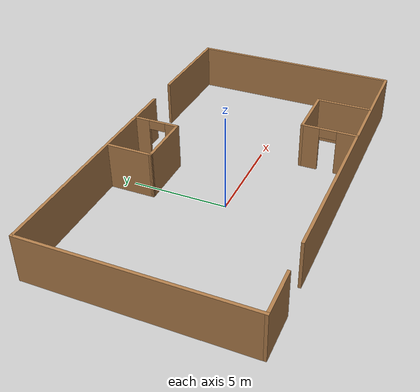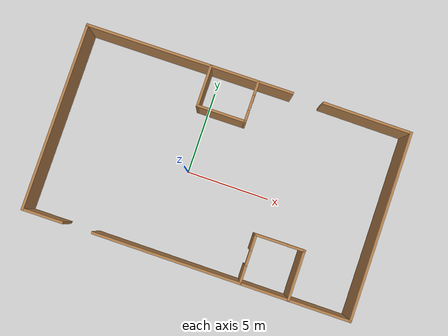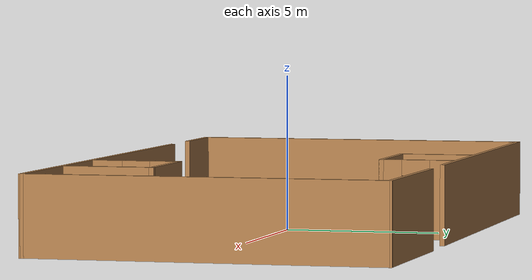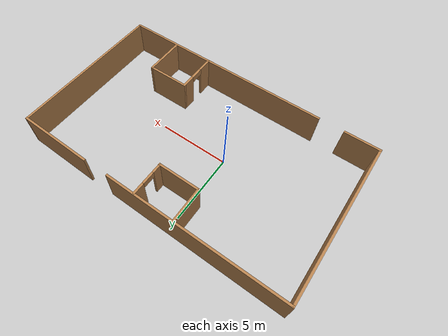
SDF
<?xml version='1.0'?>
<sdf version='1.7'>
  <model name='world'>
    <pose>1.6759 0.487034 0 0 -0 0</pose>
    <link name='Wall_0'>
      <collision name='Wall_0_Collision'>
        <geometry>
          <box>
            <size>11.2584 0.15 2.5</size>
          </box>
        </geometry>
        <pose>0 0 1.25 0 -0 0</pose>
      </collision>
      <visual name='Wall_0_Visual'>
        <pose>0 0 1.25 0 -0 0</pose>
        <geometry>
          <box>
            <size>11.2584 0.15 2.5</size>
          </box>
        </geometry>
        <material>
          <script>
            <uri>file://media/materials/scripts/gazebo.material</uri>
            <name>Gazebo/Wood</name>
          </script>
          <ambient>1 1 1 1</ambient>
        </material>
        <meta>
          <layer>0</layer>
        </meta>
      </visual>
      <pose>-9.72121 0.014923 0 0 -0 1.5708</pose>
    </link>
    <link name='Wall_1'>
      <collision name='Wall_1_Collision'>
        <geometry>
          <box>
            <size>12.5 0.15 2.5</size>
          </box>
        </geometry>
        <pose>0 0 1.25 0 -0 0</pose>
      </collision>
      <visual name='Wall_1_Visual'>
        <pose>0 0 1.25 0 -0 0</pose>
        <geometry>
          <box>
            <size>12.5 0.15 2.5</size>
          </box>
        </geometry>
        <material>
          <script>
            <uri>file://media/materials/scripts/gazebo.material</uri>
            <name>Gazebo/Wood</name>
          </script>
          <ambient>1 1 1 1</ambient>
        </material>
        <meta>
          <layer>0</layer>
        </meta>
      </visual>
      <pose>-3.54621 5.56915 0 0 -0 0</pose>
    </link>
    <link name='Wall_11'>
      <collision name='Wall_11_Collision'>
        <geometry>
          <box>
            <size>2.5 0.15 2.5</size>
          </box>
        </geometry>
        <pose>0 0 1.25 0 -0 0</pose>
      </collision>
      <visual name='Wall_11_Visual'>
        <pose>0 0 1.25 0 -0 0</pose>
        <geometry>
          <box>
            <size>2.5 0.15 2.5</size>
          </box>
        </geometry>
        <material>
          <script>
            <uri>file://media/materials/scripts/gazebo.material</uri>
            <name>Gazebo/Wood</name>
          </script>
          <ambient>1 1 1 1</ambient>
        </material>
        <meta>
          <layer>0</layer>
        </meta>
      </visual>
      <pose>-2.26892 4.34246 0 0 -0 -1.5708</pose>
    </link>
    <link name='Wall_12'>
      <collision name='Wall_12_Collision'>
        <geometry>
          <box>
            <size>3 0.15 2.5</size>
          </box>
        </geometry>
        <pose>0 0 1.25 0 -0 0</pose>
      </collision>
      <visual name='Wall_12_Visual'>
        <pose>0 0 1.25 0 -0 0</pose>
        <geometry>
          <box>
            <size>3 0.15 2.5</size>
          </box>
        </geometry>
        <material>
          <script>
            <uri>file://media/materials/scripts/gazebo.material</uri>
            <name>Gazebo/Wood</name>
          </script>
          <ambient>1 1 1 1</ambient>
        </material>
        <meta>
          <layer>0</layer>
        </meta>
      </visual>
      <pose>-0.843923 3.16746 0 0 -0 0</pose>
    </link>
    <link name='Wall_13'>
      <pose>0.581077 4.34246 0 0 -0 1.5708</pose>
      <visual name='Wall_13_Visual_0'>
        <pose>-0.878454 0 1.25 0 -0 0</pose>
        <geometry>
          <box>
            <size>0.743091 0.15 2.5</size>
          </box>
        </geometry>
        <material>
          <script>
            <uri>file://media/materials/scripts/gazebo.material</uri>
            <name>Gazebo/Wood</name>
          </script>
          <ambient>1 1 1 1</ambient>
        </material>
        <meta>
          <layer>0</layer>
        </meta>
      </visual>
      <collision name='Wall_13_Collision_0'>
        <geometry>
          <box>
            <size>0.743091 0.15 2.5</size>
          </box>
        </geometry>
        <pose>-0.878454 0 1.25 0 -0 0</pose>
      </collision>
      <visual name='Wall_13_Visual_1'>
        <pose>0.821546 0 1.25 0 -0 0</pose>
        <geometry>
          <box>
            <size>0.856909 0.15 2.5</size>
          </box>
        </geometry>
        <material>
          <script>
            <uri>file://media/materials/scripts/gazebo.material</uri>
            <name>Gazebo/Wood</name>
          </script>
          <ambient>1 1 1 1</ambient>
        </material>
        <meta>
          <layer>0</layer>
        </meta>
      </visual>
      <collision name='Wall_13_Collision_1'>
        <geometry>
          <box>
            <size>0.856909 0.15 2.5</size>
          </box>
        </geometry>
        <pose>0.821546 0 1.25 0 -0 0</pose>
      </collision>
      <visual name='Wall_13_Visual_2'>
        <pose>-0.056909 0 2.25 0 -0 0</pose>
        <geometry>
          <box>
            <size>0.9 0.15 0.5</size>
          </box>
        </geometry>
        <material>
          <script>
            <uri>file://media/materials/scripts/gazebo.material</uri>
            <name>Gazebo/Wood</name>
          </script>
          <ambient>1 1 1 1</ambient>
        </material>
        <meta>
          <layer>0</layer>
        </meta>
      </visual>
      <collision name='Wall_13_Collision_2'>
        <geometry>
          <box>
            <size>0.9 0.15 0.5</size>
          </box>
        </geometry>
        <pose>-0.056909 0 2.25 0 -0 0</pose>
      </collision>
    </link>
    <link name='Wall_15'>
      <collision name='Wall_15_Collision'>
        <geometry>
          <box>
            <size>3 0.15 2.5</size>
          </box>
        </geometry>
        <pose>0 0 1.25 0 -0 0</pose>
      </collision>
      <visual name='Wall_15_Visual'>
        <pose>0 0 1.25 0 -0 0</pose>
        <geometry>
          <box>
            <size>3 0.15 2.5</size>
          </box>
        </geometry>
        <material>
          <script>
            <uri>file://media/materials/scripts/gazebo.material</uri>
            <name>Gazebo/Wood</name>
          </script>
          <ambient>1 1 1 1</ambient>
        </material>
        <meta>
          <layer>0</layer>
        </meta>
      </visual>
      <pose>6.05026 -4.12951 0 0 -0 1.5708</pose>
    </link>
    <link name='Wall_16'>
      <collision name='Wall_16_Collision'>
        <geometry>
          <box>
            <size>3 0.15 2.5</size>
          </box>
        </geometry>
        <pose>0 0 1.25 0 -0 0</pose>
      </collision>
      <visual name='Wall_16_Visual'>
        <pose>0 0 1.25 0 -0 0</pose>
        <geometry>
          <box>
            <size>3 0.15 2.5</size>
          </box>
        </geometry>
        <material>
          <script>
            <uri>file://media/materials/scripts/gazebo.material</uri>
            <name>Gazebo/Wood</name>
          </script>
          <ambient>1 1 1 1</ambient>
        </material>
        <meta>
          <layer>0</layer>
        </meta>
      </visual>
      <pose>4.62526 -2.70451 0 0 -0 3.14159</pose>
    </link>
    <link name='Wall_17'>
      <pose>3.20026 -4.12951 0 0 -0 -1.5708</pose>
      <visual name='Wall_17_Visual_0'>
        <pose>-1.00012 0 1.25 0 -0 0</pose>
        <geometry>
          <box>
            <size>0.999751 0.15 2.5</size>
          </box>
        </geometry>
        <material>
          <script>
            <uri>file://media/materials/scripts/gazebo.material</uri>
            <name>Gazebo/Wood</name>
          </script>
          <ambient>1 1 1 1</ambient>
        </material>
        <meta>
          <layer>0</layer>
        </meta>
      </visual>
      <collision name='Wall_17_Collision_0'>
        <geometry>
          <box>
            <size>0.999751 0.15 2.5</size>
          </box>
        </geometry>
        <pose>-1.00012 0 1.25 0 -0 0</pose>
      </collision>
      <visual name='Wall_17_Visual_1'>
        <pose>0.949876 0 1.25 0 -0 0</pose>
        <geometry>
          <box>
            <size>1.10025 0.15 2.5</size>
          </box>
        </geometry>
        <material>
          <script>
            <uri>file://media/materials/scripts/gazebo.material</uri>
            <name>Gazebo/Wood</name>
          </script>
          <ambient>1 1 1 1</ambient>
        </material>
        <meta>
          <layer>0</layer>
        </meta>
      </visual>
      <collision name='Wall_17_Collision_1'>
        <geometry>
          <box>
            <size>1.10025 0.15 2.5</size>
          </box>
        </geometry>
        <pose>0.949876 0 1.25 0 -0 0</pose>
      </collision>
      <visual name='Wall_17_Visual_2'>
        <pose>-0.050249 0 2.25 0 -0 0</pose>
        <geometry>
          <box>
            <size>0.9 0.15 0.5</size>
          </box>
        </geometry>
        <material>
          <script>
            <uri>file://media/materials/scripts/gazebo.material</uri>
            <name>Gazebo/Wood</name>
          </script>
          <ambient>1 1 1 1</ambient>
        </material>
        <meta>
          <layer>0</layer>
        </meta>
      </visual>
      <collision name='Wall_17_Collision_2'>
        <geometry>
          <box>
            <size>0.9 0.15 0.5</size>
          </box>
        </geometry>
        <pose>-0.050249 0 2.25 0 -0 0</pose>
      </collision>
    </link>
    <link name='Wall_3'>
      <collision name='Wall_3_Collision'>
        <geometry>
          <box>
            <size>5.36149 0.15 2.5</size>
          </box>
        </geometry>
        <pose>0 0 1.25 0 -0 0</pose>
      </collision>
      <visual name='Wall_3_Visual'>
        <pose>0 0 1.25 0 -0 0</pose>
        <geometry>
          <box>
            <size>5.36149 0.15 2.5</size>
          </box>
        </geometry>
        <material>
          <script>
            <uri>file://media/materials/scripts/gazebo.material</uri>
            <name>Gazebo/Wood</name>
          </script>
          <ambient>1 1 1 1</ambient>
        </material>
        <meta>
          <layer>0</layer>
        </meta>
      </visual>
      <pose>7.11477 5.56915 0 0 -0 -0.011674</pose>
    </link>
    <link name='Wall_4'>
      <collision name='Wall_4_Collision'>
        <geometry>
          <box>
            <size>11.2889 0.15 2.5</size>
          </box>
        </geometry>
        <pose>0 0 1.25 0 -0 0</pose>
      </collision>
      <visual name='Wall_4_Visual'>
        <pose>0 0 1.25 0 -0 0</pose>
        <geometry>
          <box>
            <size>11.2889 0.15 2.5</size>
          </box>
        </geometry>
        <material>
          <script>
            <uri>file://media/materials/scripts/gazebo.material</uri>
            <name>Gazebo/Wood</name>
          </script>
          <ambient>1 1 1 1</ambient>
        </material>
        <meta>
          <layer>0</layer>
        </meta>
      </visual>
      <pose>9.70513 -0.030703 0 0 -0 -1.57353</pose>
    </link>
    <link name='Wall_5'>
      <collision name='Wall_5_Collision'>
        <geometry>
          <box>
            <size>15.3613 0.15 2.5</size>
          </box>
        </geometry>
        <pose>0 0 1.25 0 -0 0</pose>
      </collision>
      <visual name='Wall_5_Visual'>
        <pose>0 0 1.25 0 -0 0</pose>
        <geometry>
          <box>
            <size>15.3613 0.15 2.5</size>
          </box>
        </geometry>
        <material>
          <script>
            <uri>file://media/materials/scripts/gazebo.material</uri>
            <name>Gazebo/Wood</name>
          </script>
          <ambient>1 1 1 1</ambient>
        </material>
        <meta>
          <layer>0</layer>
        </meta>
      </visual>
      <pose>2.08436 -5.56972 0 0 -0 3.13759</pose>
    </link>
    <link name='Wall_7'>
      <collision name='Wall_7_Collision'>
        <geometry>
          <box>
            <size>2.5 0.15 2.5</size>
          </box>
        </geometry>
        <pose>0 0 1.25 0 -0 0</pose>
      </collision>
      <visual name='Wall_7_Visual'>
        <pose>0 0 1.25 0 -0 0</pose>
        <geometry>
          <box>
            <size>2.5 0.15 2.5</size>
          </box>
        </geometry>
        <material>
          <script>
            <uri>file://media/materials/scripts/gazebo.material</uri>
            <name>Gazebo/Wood</name>
          </script>
          <ambient>1 1 1 1</ambient>
        </material>
        <meta>
          <layer>0</layer>
        </meta>
      </visual>
      <pose>-8.54621 -5.5393 0 0 -0 3.14159</pose>
    </link>
    <static>1</static>
  </model>
</sdf>
